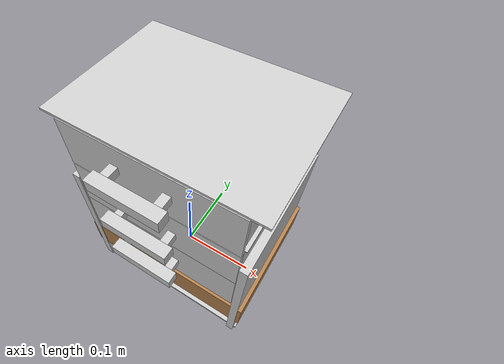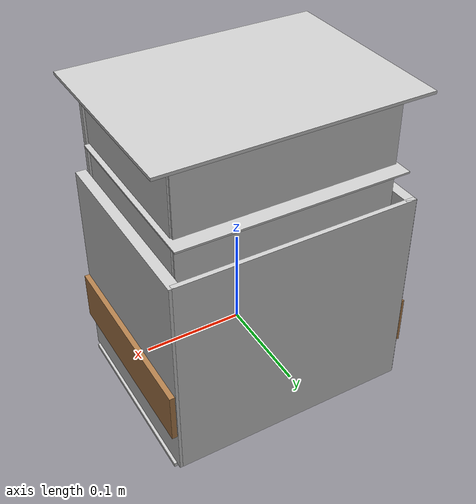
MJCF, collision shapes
<mujoco model="wooden_cabinet_tall_bottom">
    <compiler angle="radian" meshdir="./" autolimits="true" />
    <size njmax="500" nconmax="100" />
    <asset>
      <texture file="wooden_cabinet/dark_fine_wood.png" name="tex-wooden_cabinet" type="2d"/>
      <material name="wooden_cabinet_top" reflectance="0.5" texrepeat="1 1" texture="tex-wooden_cabinet" texuniform="false"/>
      <mesh file="wooden_cabinet/wooden_cabinet_top/visual/wooden_cabinet_top_vis.msh" name="wooden_cabinet_top_vis" scale="0.05 0.05 0.05"/>
      <texture file="wooden_cabinet/dark_fine_wood.png" name="tex-wooden_cabinet_base" type="2d"/>
      <material name="wooden_cabinet_base" reflectance="0.5" texrepeat="1 1" texture="tex-wooden_cabinet_base" texuniform="false"/>
      <mesh file="wooden_cabinet/wooden_cabinet_base/visual/wooden_cabinet_base_vis.msh" name="wooden_cabinet_base_vis" scale="0.05 0.05 0.05"/>
      <texture file="wooden_cabinet/metal.png" name="tex-wooden_cabinet_handle" type="2d"/>
      <material name="wooden_cabinet_top_handle" reflectance="0.5" texrepeat="1 1" texture="tex-wooden_cabinet_handle" texuniform="false"/>
      <mesh file="wooden_cabinet/wooden_cabinet_top_handle/visual/wooden_cabinet_top_handle_vis.msh" name="wooden_cabinet_top_handle_vis" scale="0.05 0.05 0.05"/>
      <material name="wooden_cabinet_middle" reflectance="0.5" texrepeat="1 1" texture="tex-wooden_cabinet" texuniform="false"/>
      <mesh file="wooden_cabinet/wooden_cabinet_middle/visual/wooden_cabinet_middle_vis.msh" name="wooden_cabinet_middle_vis" scale="0.05 0.05 0.05"/>
      <material name="wooden_cabinet_middle_handle" reflectance="0.5" texrepeat="1 1" texture="tex-wooden_cabinet_handle" texuniform="false"/>
      <mesh file="wooden_cabinet/wooden_cabinet_middle_handle/visual/wooden_cabinet_middle_handle_vis.msh" name="wooden_cabinet_middle_handle_vis" scale="0.05 0.05 0.05"/>
      <material name="wooden_cabinet_bottom" reflectance="0.5" texrepeat="1 1" texture="tex-wooden_cabinet" texuniform="false"/>
      <mesh file="wooden_cabinet/wooden_cabinet_bottom/visual/wooden_cabinet_bottom_vis.msh" name="wooden_cabinet_bottom_vis" scale="0.05 0.05 0.05"/>
      <material name="wooden_cabinet_bottom_handle" reflectance="0.5" texrepeat="1 1" texture="tex-wooden_cabinet_handle" texuniform="false"/>
      <mesh file="wooden_cabinet/wooden_cabinet_bottom_handle/visual/wooden_cabinet_bottom_handle_vis.msh" name="wooden_cabinet_bottom_handle_vis" scale="0.05 0.05 0.05"/>
    </asset>
    <worldbody>
        <body>
          <body name="object">
        <body name="base" pos="0 0 0.0">
        <!-- Adjust top_side height. -->
        <site type="box" pos="0.00354 0.01567 0.27152" quat="1 0 0 0" size="0.12534 0.09438 0.00147" group="0" rgba="0.8 0.8 0 0" name="top_side"/>

        <!-- Base block: height 0.025 (total height 0.05), matching the cabinet width. -->
          <geom solimp="0.998 0.998 0.001" solref="0.001 1" density="100" friction="0.95 0.3 0.1" type="box" pos="0.004 0.016 0.025" quat="1 0 0 0" size="0.12534 0.09438 0.025" group="1" material="wooden_cabinet_base" conaffinity="0" contype="0"/>
          <geom solimp="0.998 0.998 0.001" solref="0.001 1" density="100" friction="0.95 0.3 0.1" type="mesh" mesh="wooden_cabinet_base_vis" pos="0 0 0.05" conaffinity="0" contype="0" group="1" material="wooden_cabinet_base"/>

        <!-- Base geoms: cabinet sits on the block and is shifted down by 0.05. -->
        <geom solimp="0.998 0.998 0.001" solref="0.001 1" density="100" friction="0.95 0.3 0.1" type="box" pos="0.00397 0.10954 0.06350" quat="0.49988 -0.50104 -0.50012 0.49896" size="0.00193 0.10453 0.11106" group="0" rgba="0.8 0.8 0.8 0.3"/>
        <geom solimp="0.998 0.998 0.001" solref="0.001 1" density="100" friction="0.95 0.3 0.1" type="box" pos="0.00405 0.01635 -0.04314" quat="0.70792 0.00065 0.70629 -0.00065" size="0.00199 0.08960 0.12277" group="0" rgba="0.8 0.8 0.8 0.3"/>
        <geom solimp="0.998 0.998 0.001" solref="0.001 1" density="100" friction="0.95 0.3 0.1" type="box" pos="-0.11216 0.01625 0.06426" quat="0.00000 0.00000 1.00000 0.00000" size="0.00517 0.09542 0.10584" group="0" rgba="0.8 0.8 0.8 0.3"/>
        <geom solimp="0.998 0.998 0.001" solref="0.001 1" density="100" friction="0.95 0.3 0.1" type="box" pos="0.11898 0.01625 0.06426" quat="0.00000 1.00000 0.00000 0.00000" size="0.00517 0.09542 0.10584" group="0" rgba="0.8 0.8 0.8 0.3"/>
        <geom solimp="0.998 0.998 0.001" solref="0.001 1" density="100" friction="0.95 0.3 0.1" type="box" pos="0.00211 0.10938 0.06426" quat="0.49997 0.49997 -0.50003 -0.50003" size="0.00231 0.10584 0.11912" group="0" rgba="0.8 0.8 0.8 0.3"/>
        <geom solimp="0.998 0.998 0.001" solref="0.001 1" density="100" friction="0.95 0.3 0.1" type="box" pos="0.00376 0.01868 0.19935" quat="0.70792 0.00065 0.70629 -0.00065" size="0.00085 0.08935 0.11168" group="0" rgba="0.8 0.8 0.8 0.3"/>
        <geom solimp="0.998 0.998 0.001" solref="0.001 1" density="100" friction="0.95 0.3 0.1" type="box" pos="0.00408 0.01868 0.05933" quat="0.00065 -0.70792 0.00065 0.70629" size="0.00085 0.08935 0.11168" group="0" rgba="0.8 0.8 0.8 0.3"/>
        <geom solimp="0.998 0.998 0.001" solref="0.001 1" density="100" friction="0.95 0.3 0.1" type="box" pos="0.00392 0.01868 0.12928" quat="0.70792 0.00065 0.70629 -0.00065" size="0.00085 0.08935 0.11168" group="0" rgba="0.8 0.8 0.8 0.3"/>
        <geom solimp="0.998 0.998 0.001" solref="0.001 1" density="100" friction="0.95 0.3 0.1" type="box" pos="0.00394 0.01577 0.27157" quat="0.70711 0.00000 0.70711 0.00000" size="0.00142 0.09409 0.12729" group="0" rgba="0.8 0.8 0.8 0.3"/>

        <!-- ========== Top drawer (shifted down by 0.05) ========== -->
          <body name="cabinet_top" pos="0 0.0 0.05">
                <inertial pos="0 0 0" mass="3" diaginertia="1 1 1" />
                <joint name="top_level" type="slide" pos="0 0 0" axis="0 1 0"
               limited="true" range="-0.16 0.01" damping="50"/>

        <site type="box" pos="0.00328 0.01128 0.18563" quat="0.70711 0.00000 0.70711 0.00000" size="0.02993 0.07561 0.10224" group="0" rgba="0.8 0.8 0.8 0" name="top_region"/>

        <geom solimp="0.998 0.998 0.001" solref="0.001 1" density="100" friction="0.95 0.3 0.1" type="mesh" mesh="wooden_cabinet_top_vis" conaffinity="0" contype="0" group="1" material="wooden_cabinet_top"/>
        <geom solimp="0.998 0.998 0.001" solref="0.001 1" density="100" friction="0.95 0.3 0.1" type="box" pos="0.00334 -0.07524 0.18309" quat="0.50000 0.50000 -0.50000 -0.50000" size="0.00271 0.03427 0.10934" group="0" rgba="0.8 0.8 0.8 0.3"/>
        <geom solimp="0.998 0.998 0.001" solref="0.001 1" density="100" friction="0.95 0.3 0.1" type="box" pos="0.00334 -0.06839 0.18358" quat="0.50000 0.50000 0.50000 0.50000" size="0.00356 0.03214 0.10679" group="0" rgba="0.8 0.8 0.8 0.3"/>
        <geom solimp="0.998 0.998 0.001" solref="0.001 1" density="100" friction="0.95 0.3 0.1" type="box" pos="0.00334 0.09077 0.18358" quat="0.50000 0.50000 0.50000 0.50000" size="0.00356 0.03214 0.10679" group="0" rgba="0.8 0.8 0.8 0.3"/>
        <geom solimp="0.998 0.998 0.001" solref="0.001 1" density="100" friction="0.95 0.3 0.1" type="box" pos="-0.10191 0.01105 0.18358" quat="0.70711 0.70711 -0.00115 -0.00115" size="0.00241 0.03165 0.08148" group="0" rgba="0.8 0.8 0.8 0.3"/>
        <geom solimp="0.998 0.998 0.001" solref="0.001 1" density="100" friction="0.95 0.3 0.1" type="box" pos="0.10894 0.01105 0.18358" quat="0.70711 0.70711 -0.00115 -0.00115" size="0.00241 0.03133 0.08148" group="0" rgba="0.8 0.8 0.8 0.3"/>
        <geom solimp="0.998 0.998 0.001" solref="0.001 1" density="100" friction="0.95 0.3 0.1" type="box" pos="0.00348 0.01048 0.15514" quat="0.70711 0.00000 0.70711 0.00000" size="0.00401 0.08095 0.10696" group="0" rgba="0.8 0.8 0.8 0.3"/>

        <geom solimp="0.998 0.998 0.001" solref="0.001 1" density="100" friction="0.95 0.3 0.1" type="mesh" mesh="wooden_cabinet_top_handle_vis" conaffinity="0" contype="0" group="1" material="wooden_cabinet_top_handle"/>
        <geom solimp="0.998 0.998 0.001" solref="0.001 1" density="100" friction="0.95 0.3 0.1" type="box" pos="-0.00278 -0.10161 0.18393" quat="0.50000 0.50000 -0.50000 -0.50000" size="0.00770 0.00817 0.04445" group="0" rgba="0.8 0.8 0.8 0.3"/>
        <geom solimp="0.998 0.998 0.001" solref="0.001 1" density="100" friction="0.95 0.3 0.1" type="box" pos="0.02916 -0.08348 0.18393" quat="0.70711 0.70711 0.00000 -0.00000" size="0.00507 0.00552 0.01057" group="0" rgba="0.8 0.8 0.8 0.3"/>
        <geom solimp="0.998 0.998 0.001" solref="0.001 1" density="100" friction="0.95 0.3 0.1" type="box" pos="-0.03560 -0.08348 0.18393" quat="0.70711 0.70711 0.00000 -0.00000" size="0.00507 0.00560 0.01057" group="0" rgba="0.8 0.8 0.8 0.3"/>
          </body>

          <!-- ========== Middle drawer (on the block, shifted up by 0.1) ========== -->
          <body name="cabinet_middle" pos="0 0.0 0.05">
                <inertial pos="0 0 0" mass="3" diaginertia="1 1 1" />
                <joint name="middle_level" type="slide" pos="0 0 0" axis="0 1 0"
               limited="true" range="-0.16 0.01" damping="50"/>

        <site name="middle_region" type="box" pos="0.00328 0.01128 0.11690" quat="0.70711 0.00000 0.70711 0.00000" size="0.02993 0.07561 0.10224" group="0" rgba="0.8 0.8 0.8 0"/>

        <geom solimp="0.998 0.998 0.001" solref="0.001 1" density="100" friction="0.95 0.3 0.1" type="mesh" mesh="wooden_cabinet_middle_vis" conaffinity="0" contype="0" group="1" material="wooden_cabinet_middle"/>
        <geom solimp="0.998 0.998 0.001" solref="0.001 1" density="100" friction="0.95 0.3 0.1" type="box" pos="0.00334 -0.07524 0.11338" quat="0.50000 0.50000 -0.50000 -0.50000" size="0.00271 0.03427 0.10934" group="0" rgba="0.8 0.8 0.8 0.3"/>
        <geom solimp="0.998 0.998 0.001" solref="0.001 1" density="100" friction="0.95 0.3 0.1" type="box" pos="0.00334 0.09077 0.11387" quat="0.50000 0.50000 0.50000 0.50000" size="0.00356 0.03214 0.10679" group="0" rgba="0.8 0.8 0.8 0.3"/>
        <geom solimp="0.998 0.998 0.001" solref="0.001 1" density="100" friction="0.95 0.3 0.1" type="box" pos="0.00334 -0.06839 0.11387" quat="0.50000 0.50000 0.50000 0.50000" size="0.00356 0.03214 0.10679" group="0" rgba="0.8 0.8 0.8 0.3"/>
        <geom solimp="0.998 0.998 0.001" solref="0.001 1" density="100" friction="0.95 0.3 0.1" type="box" pos="0.10894 0.01105 0.11387" quat="0.70711 0.70711 -0.00115 -0.00115" size="0.00241 0.03133 0.08148" group="0" rgba="0.8 0.8 0.8 0.3"/>
        <geom solimp="0.998 0.998 0.001" solref="0.001 1" density="100" friction="0.95 0.3 0.1" type="box" pos="-0.10191 0.01105 0.11387" quat="0.70711 0.70711 -0.00115 -0.00115" size="0.00241 0.03165 0.08148" group="0" rgba="0.8 0.8 0.8 0.3"/>
        <geom solimp="0.998 0.998 0.001" solref="0.001 1" density="100" friction="0.95 0.3 0.1" type="box" pos="0.00348 0.01048 0.08543" quat="0.70711 0.00000 0.70711 0.00000" size="0.00401 0.08095 0.10696" group="0" rgba="0.8 0.8 0.8 0.3"/>

        <geom solimp="0.998 0.998 0.001" solref="0.001 1" density="100" friction="0.95 0.3 0.1" type="mesh" mesh="wooden_cabinet_middle_handle_vis" conaffinity="0" contype="0" group="1" material="wooden_cabinet_middle_handle"/>
        <geom solimp="0.998 0.998 0.001" solref="0.001 1" density="100" friction="0.95 0.3 0.1" type="box" pos="-0.00278 -0.10161 0.11041" quat="0.50000 0.50000 -0.50000 -0.50000" size="0.00770 0.00817 0.04445" group="0" rgba="0.8 0.8 0.8 0.3"/>
        <geom solimp="0.998 0.998 0.001" solref="0.001 1" density="100" friction="0.95 0.3 0.1" type="box" pos="0.02916 -0.08348 0.11041" quat="0.70711 0.70711 0.00000 -0.00000" size="0.00507 0.00552 0.01057" group="0" rgba="0.8 0.8 0.8 0.3"/>
        <geom solimp="0.998 0.998 0.001" solref="0.001 1" density="100" friction="0.95 0.3 0.1" type="box" pos="-0.03560 -0.08348 0.11041" quat="0.70711 0.70711 0.00000 -0.00000" size="0.00507 0.00560 0.01057" group="0" rgba="0.8 0.8 0.8 0.3"/>
          </body>

          <!-- ========== Bottom drawer (no drawer block; cabinet is raised by the lower block) ========== -->
          <body name="cabinet_bottom" pos="0 0.0 0.05">
                <inertial pos="0 0 0" mass="3" diaginertia="1 1 1" />
                <joint name="bottom_level" type="slide" pos="0 0 0" axis="0 1 0"
               limited="true" range="-0.16 0.01" damping="50"/>

        <site name="bottom_region" type="box" pos="0.00328 0.01128 0.04701" quat="0.70711 0.00000 0.70711 0.00000" size="0.02993 0.07561 0.10224" group="0" rgba="0.8 0.8 0.8 0"/>

        <geom solimp="0.998 0.998 0.001" solref="0.001 1" density="100" friction="0.95 0.3 0.1" type="mesh" mesh="wooden_cabinet_bottom_vis" conaffinity="0" contype="0" group="1" material="wooden_cabinet_bottom"/>
        <geom solimp="0.998 0.998 0.001" solref="0.001 1" density="100" friction="0.95 0.3 0.1" type="box" pos="0.00334 -0.07524 0.04476" quat="0.50000 0.50000 -0.50000 -0.50000" size="0.00271 0.03427 0.10934" group="0" rgba="0.8 0.8 0.8 0.3"/>
        <geom solimp="0.998 0.998 0.001" solref="0.001 1" density="100" friction="0.95 0.3 0.1" type="box" pos="0.00334 0.09077 0.04525" quat="0.50000 0.50000 0.50000 0.50000" size="0.00356 0.03214 0.10679" group="0" rgba="0.8 0.8 0.8 0.3"/>
        <geom solimp="0.998 0.998 0.001" solref="0.001 1" density="100" friction="0.95 0.3 0.1" type="box" pos="0.00334 -0.06839 0.04525" quat="0.50000 0.50000 0.50000 0.50000" size="0.00356 0.03214 0.10679" group="0" rgba="0.8 0.8 0.8 0.3"/>
        <geom solimp="0.998 0.998 0.001" solref="0.001 1" density="100" friction="0.95 0.3 0.1" type="box" pos="0.10894 0.01105 0.04525" quat="0.70711 0.70711 -0.00115 -0.00115" size="0.00241 0.03133 0.08148" group="0" rgba="0.8 0.8 0.8 0.3"/>
        <geom solimp="0.998 0.998 0.001" solref="0.001 1" density="100" friction="0.95 0.3 0.1" type="box" pos="-0.10191 0.01105 0.04525" quat="0.70711 0.70711 -0.00115 -0.00115" size="0.00241 0.03165 0.08148" group="0" rgba="0.8 0.8 0.8 0.3"/>
        <geom solimp="0.998 0.998 0.001" solref="0.001 1" density="100" friction="0.95 0.3 0.1" type="box" pos="0.00348 0.01048 0.01682" quat="0.70711 0.00000 0.70711 0.00000" size="0.00401 0.08095 0.10696" group="0" rgba="0.8 0.8 0.8 0.3"/>

        <geom solimp="0.998 0.998 0.001" solref="0.001 1" density="100" friction="0.95 0.3 0.1" type="mesh" mesh="wooden_cabinet_bottom_handle_vis" conaffinity="0" contype="0" group="1" material="wooden_cabinet_bottom_handle"/>
        <geom solimp="0.998 0.998 0.001" solref="0.001 1" density="100" friction="0.95 0.3 0.1" type="box" pos="-0.00278 -0.10161 0.04114" quat="0.50000 0.50000 -0.50000 -0.50000" size="0.00770 0.00817 0.04445" group="0" rgba="0.8 0.8 0.8 0.3"/>
        <geom solimp="0.998 0.998 0.001" solref="0.001 1" density="100" friction="0.95 0.3 0.1" type="box" pos="0.02916 -0.08348 0.04114" quat="0.70711 0.70711 0.00000 -0.00000" size="0.00507 0.00552 0.01057" group="0" rgba="0.8 0.8 0.8 0.3"/>
        <geom solimp="0.998 0.998 0.001" solref="0.001 1" density="100" friction="0.95 0.3 0.1" type="box" pos="-0.03560 -0.08348 0.04114" quat="0.70711 0.70711 0.00000 -0.00000" size="0.00507 0.00560 0.01057" group="0" rgba="0.8 0.8 0.8 0.3"/>
          </body>

        </body>
          </body>
          <!-- Restore bottom_site and top_site to the original height. -->
          <site rgba="0 0 0 0" size="0.05" pos="0 0 -0.045" name="bottom_site"/>
          <site rgba="0 0 0 0" size="0.05" pos="0 0 0.045" name="top_site"/>
          <site rgba="0 0 0 0" size="0.05" pos="0.045 0.045 0" name="horizontal_radius_site"/>
        </body>
    </worldbody>
</mujoco>
